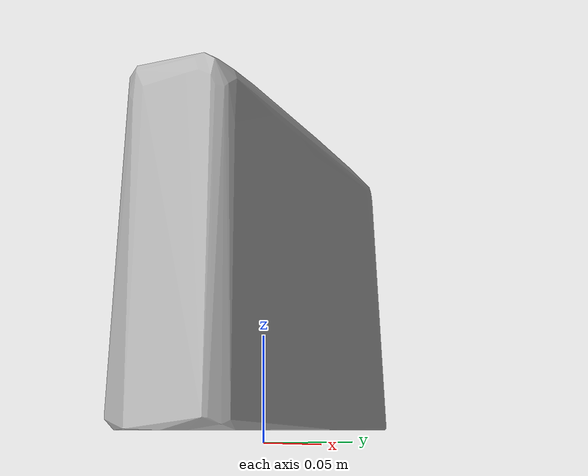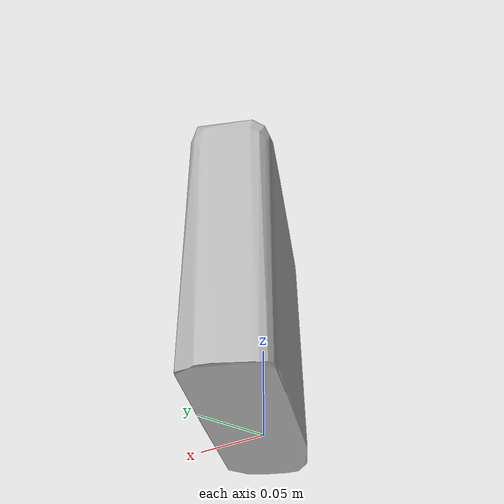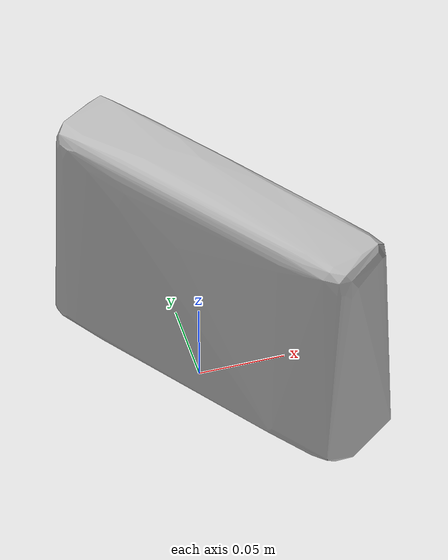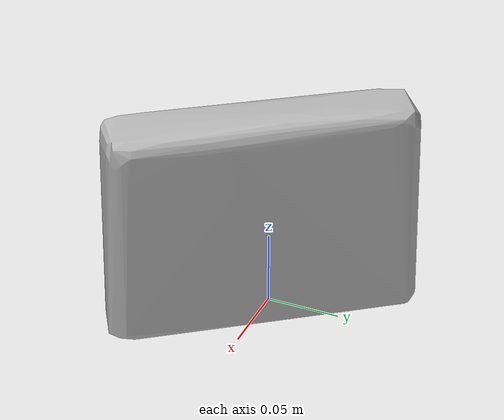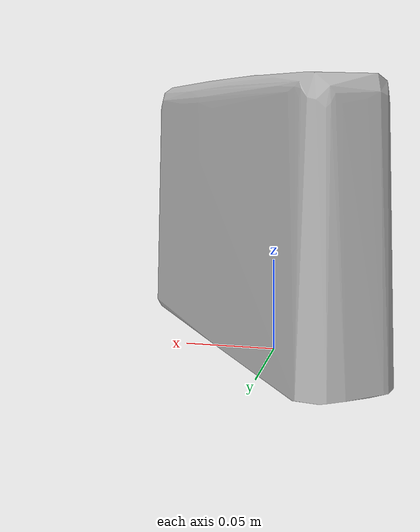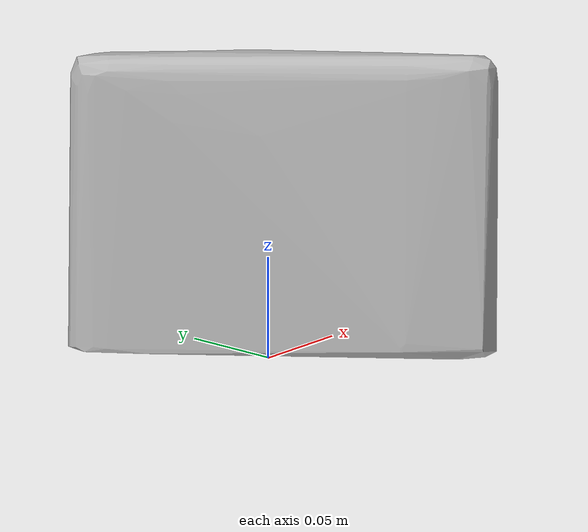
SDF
<?xml version='1.0'?>
<sdf version="1.4">
  <model name="nutrigrain_raspberry">
    <static>false</static>
    <link name="link">
      <inertial>
        <pose>0.01102322044208651 -0.0014354301965872052 0.07387532820678863 1.5636390608717228 -0.0009088212173648092 -2.497948509173135</pose>
        <mass>0.13750465548566668</mass>
        <inertia>
          <ixx>0.0006783101251884953</ixx>
          <ixy>3.5315726687772764e-22</ixy>
          <ixz>1.446992106130065e-19</ixz>
          <iyy>0.0004810672169751697</iyy>
          <iyz>3.174931453584562e-22</iyz>
          <izz>0.0002509653766264881</izz>
        </inertia>
      </inertial>
      <collision name="collision">
        <geometry>
          <mesh>
            <!-- Use a downsampled mesh for collisions -->
            <uri>model:///nutrigrain_raspberry/nutrigrain_raspberry_250_collision.obj</uri>
	        </mesh>
        </geometry>
        <surface>
      </surface>
      </collision>
      <visual name="visual">
        <geometry>
          <mesh>
            <uri>model:///nutrigrain_raspberry/optimized_tsdf_texture_mapped_mesh.obj</uri>
	        </mesh>
        </geometry>
        <material>
          <script>
            <uri>model:///nutrigrain_raspberry/nutrigrain_raspberry.material</uri>
            <name>nutrigrain_raspberry</name>
          </script>
        </material>
      </visual>
    </link>
  </model>
</sdf>
